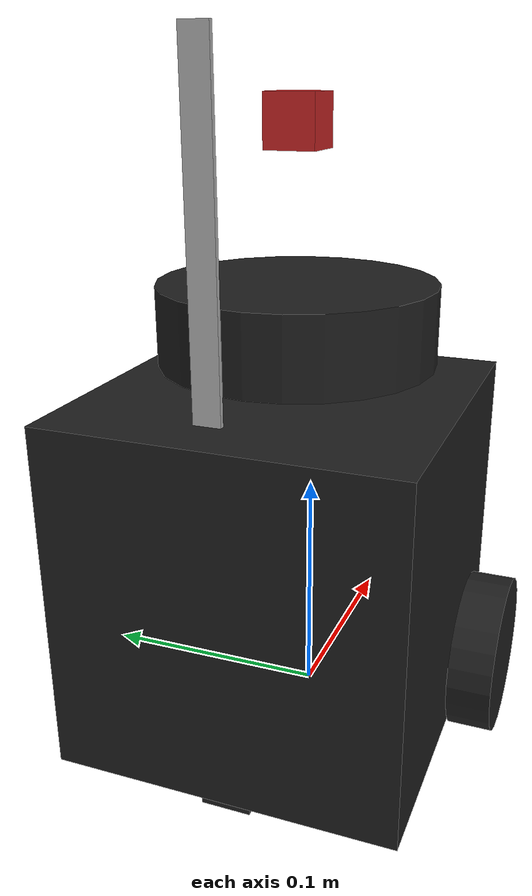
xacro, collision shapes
<?xml version="1.0" ?>
<robot name="turtlebot3_burger" xmlns:xacro="http://ros.org/wiki/xacro">
  <xacro:include filename="$(find turtlebot3_description)/urdf/common_properties.xacro"/>
  <xacro:include filename="$(find turtlebot3_description)/urdf/turtlebot3_burger.gazebo.xacro"/>

  <link name="base_footprint"/>

  <joint name="base_joint" type="fixed">
    <parent link="base_footprint"/>
    <child link="base_link"/>
    <origin xyz="0.0 0.0 0.010" rpy="0 0 0"/>
  </joint>

  <link name="base_link">
    <visual>
      <origin xyz="-0.032 0 0.0" rpy="0 0 0"/>
      <geometry>
        <mesh filename="package://turtlebot3_description/meshes/bases/burger_base.stl" scale="0.001 0.001 0.001"/>
      </geometry>
      <material name="light_black"/>
    </visual>

    <collision>
      <origin xyz="-0.032 0 0.070" rpy="0 0 0"/>
      <geometry>
        <box size="0.140 0.140 0.143"/>
      </geometry>
    </collision>

    <inertial>
      <origin xyz="0 0 0" rpy="0 0 0"/>
      <mass value="8.2573504e-01"/>
      <inertia ixx="2.2124416e-03" ixy="-1.2294101e-05" ixz="3.4938785e-05"
               iyy="2.1193702e-03" iyz="-5.0120904e-06"
               izz="2.0064271e-03" />
    </inertial>
  </link>

  <joint name="wheel_left_joint" type="continuous">
    <parent link="base_link"/>
    <child link="wheel_left_link"/>
    <origin xyz="0.0 0.08 0.023" rpy="-1.57 0 0"/>
    <axis xyz="0 0 1"/>
  </joint>

  <link name="wheel_left_link">
    <visual>
      <origin xyz="0 0 0" rpy="1.57 0 0"/>
      <geometry>
        <mesh filename="package://turtlebot3_description/meshes/wheels/left_tire.stl" scale="0.001 0.001 0.001"/>
      </geometry>
      <material name="dark"/>
    </visual>

    <collision>
      <origin xyz="0 0 0" rpy="0 0 0"/>
      <geometry>
        <cylinder length="0.018" radius="0.033"/>
      </geometry>
    </collision>

    <inertial>
      <origin xyz="0 0 0" />
      <mass value="2.8498940e-02" />
      <inertia ixx="1.1175580e-05" ixy="-4.2369783e-11" ixz="-5.9381719e-09"
               iyy="1.1192413e-05" iyz="-1.4400107e-11"
               izz="2.0712558e-05" />
      </inertial>
  </link>

  <joint name="wheel_right_joint" type="continuous">
    <parent link="base_link"/>
    <child link="wheel_right_link"/>
    <origin xyz="0.0 -0.080 0.023" rpy="-1.57 0 0"/>
    <axis xyz="0 0 1"/>
  </joint>

  <link name="wheel_right_link">
    <visual>
      <origin xyz="0 0 0" rpy="1.57 0 0"/>
      <geometry>
        <mesh filename="package://turtlebot3_description/meshes/wheels/right_tire.stl" scale="0.001 0.001 0.001"/>
      </geometry>
      <material name="dark"/>
    </visual>

    <collision>
      <origin xyz="0 0 0" rpy="0 0 0"/>
      <geometry>
        <cylinder length="0.018" radius="0.033"/>
      </geometry>
    </collision>

    <inertial>
      <origin xyz="0 0 0" />
      <mass value="2.8498940e-02" />
      <inertia ixx="1.1175580e-05" ixy="-4.2369783e-11" ixz="-5.9381719e-09"
               iyy="1.1192413e-05" iyz="-1.4400107e-11"
               izz="2.0712558e-05" />
      </inertial>
  </link>

  <joint name="caster_back_joint" type="fixed">
    <parent link="base_link"/>
    <child link="caster_back_link"/>
    <origin xyz="-0.081 0 -0.004" rpy="-1.57 0 0"/>
  </joint>

  <link name="caster_back_link">
    <collision>
      <origin xyz="0 0.001 0" rpy="0 0 0"/>
      <geometry>
        <box size="0.030 0.009 0.020"/>
      </geometry>
    </collision>

    <inertial>
      <origin xyz="0 0 0" />
      <mass value="0.005" />
      <inertia ixx="0.001" ixy="0.0" ixz="0.0"
               iyy="0.001" iyz="0.0"
               izz="0.001" />
    </inertial>
  </link>

  <joint name="imu_joint" type="fixed">
    <parent link="base_link"/>
    <child link="imu_link"/>
    <origin xyz="-0.032 0 0.068" rpy="0 0 0"/>
  </joint>

  <link name="imu_link"/>

  <joint name="scan_joint" type="fixed">
    <parent link="base_link"/>
    <child link="base_scan"/>
    <origin xyz="-0.032 0 0.172" rpy="0 0 0"/>
  </joint>

  <link name="base_scan">
    <visual>
      <origin xyz="0 0 0.0" rpy="0 0 0"/>
      <geometry>
        <mesh filename="package://turtlebot3_description/meshes/sensors/lds.stl" scale="0.001 0.001 0.001"/>
      </geometry>
      <material name="dark"/>
    </visual>

    <collision>
      <origin xyz="0.015 0 -0.0065" rpy="0 0 0"/>
      <geometry>
        <cylinder length="0.0315" radius="0.055"/>
      </geometry>
    </collision>

    <inertial>
      <mass value="0.114" />
      <origin xyz="0 0 0" />
      <inertia ixx="0.001" ixy="0.0" ixz="0.0"
               iyy="0.001" iyz="0.0"
               izz="0.001" />
    </inertial>
  </link>

  <!-- Added by Klaas -->

  <!-- camera holder -->

  <joint name="camera_holder_joint" type="fixed">
    <parent link="base_link"/>
    <child link="camera_holder"/>
    <origin xyz="-0.10 0 0.15" rpy="0 0 0"/>
  </joint>

  <link name="camera_holder">
    <visual>
      <origin xyz="0 0 0.04" rpy="0 0 0"/>
      <geometry>
        <box size="0.002 0.01 0.12"/>
      </geometry>
    </visual>
    <collision>
      <origin xyz="0 0 0.06" rpy="0 0 0"/>
      <geometry>
        <box size="0.002 0.01 0.12"/>
      </geometry>
    </collision>
  </link>

  <!-- Basic camera -->

  <!-- Kinect -->

  <!-- Wide angle camera -->
  <xacro:include filename="$(find klaas_robots)/urdf/wide_angle_camera.urdf.xacro" />
  <xacro:wide_angle_camera name="camera" parent="base_link">
  <origin xyz="-0.017 0.0 0.24"/>
  </xacro:wide_angle_camera>

</robot>

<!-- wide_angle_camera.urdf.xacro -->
<!-- http://gazebosim.org/tutorials?tut=wide_angle_camera&branch=wideanglecamera -->
<!-- http://gazebosim.org/tutorials?tut=ros_gzplugins -->

<robot xmlns:xacro="http://www.ros.org/wiki/xacro">
    <xacro:property name="M_PI" value="3.1415926535897931" />
    <xacro:property name="camera_link" value="0.02" />

    <xacro:macro name="camera_model" params="name parent *origin">
      <joint name="${name}_joint" type="fixed">
        <xacro:insert_block name="origin" />
        <parent link="${parent}"/>
        <child link="${name}_link"/>
      </joint>
      <!-- Camera -->
      <link name="camera_link">
        <collision>
          <origin xyz="0 0 0" rpy="0 0 0"/>
          <geometry>
            <box size="${camera_link} ${camera_link} ${camera_link}"/>
          </geometry>
        </collision>

        <visual>
          <origin xyz="0 0 0" rpy="0 0 0"/>
          <geometry>
            <box size="${camera_link} ${camera_link} ${camera_link}"/>
          </geometry>
          <material name="red"/>
        </visual>

        <inertial>
          <mass value="1e-5" />
          <origin xyz="0 0 0" rpy="0 0 0"/>
          <inertia ixx="1e-6" ixy="0" ixz="0" iyy="1e-6" iyz="0" izz="1e-6" />
        </inertial>
      </link>
    </xacro:macro>

    <xacro:macro name="wide_angle_camera" params="name parent *origin">
      <xacro:camera_model name="${name}" parent="${parent}">
        <xacro:insert_block name="origin" />
      </xacro:camera_model>

      <!-- camera -->
      <gazebo reference="camera_link">
        <!-- use camera type for rectified images and wideangle for fisheye effect -->
        <sensor type="wideanglecamera" name="camera1">
          <update_rate>10.0</update_rate>
          <camera name="head">
            <!-- 106 degrees horizontal field of view -->
            <horizontal_fov>1.849</horizontal_fov>
            <image>
              <width>410</width>
              <height>308</height>
              <format>R8G8B8</format>
            </image>
            <clip>
              <near>0.02</near>
              <far>300</far>
            </clip>
            <noise>
              <type>gaussian</type>
              <mean>0.0</mean>
              <stddev>0.007</stddev>
            </noise>
          </camera>
          <plugin name="camera_controller" filename="libgazebo_ros_camera.so">
            <alwaysOn>true</alwaysOn>
            <updateRate>0.0</updateRate>
            <cameraName>wa/camera</cameraName>
            <imageTopicName>image_raw</imageTopicName>
            <cameraInfoTopicName>camera_info</cameraInfoTopicName>
            <frameName>camera_link</frameName>
            <hackBaseline>0.07</hackBaseline>
            <distortionK1>0.0</distortionK1>
            <distortionK2>0.0</distortionK2>
            <distortionK3>0.0</distortionK3>
            <distortionT1>0.0</distortionT1>
            <distortionT2>0.0</distortionT2>
          </plugin>
        </sensor>
        <turnGravityOff>true</turnGravityOff>
      </gazebo>
    </xacro:macro>
</robot>
